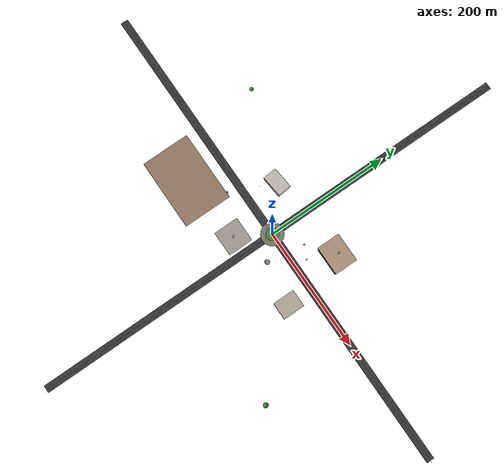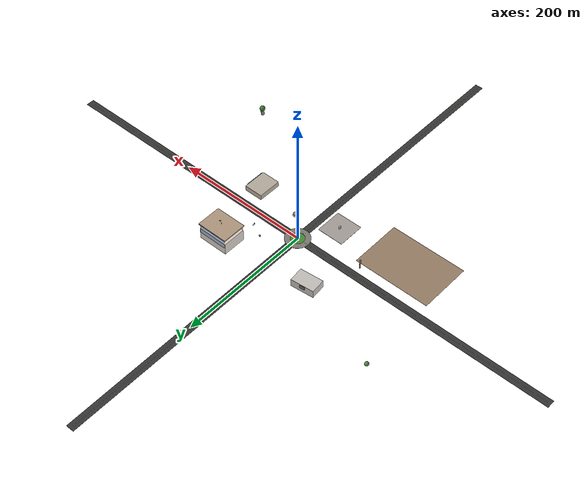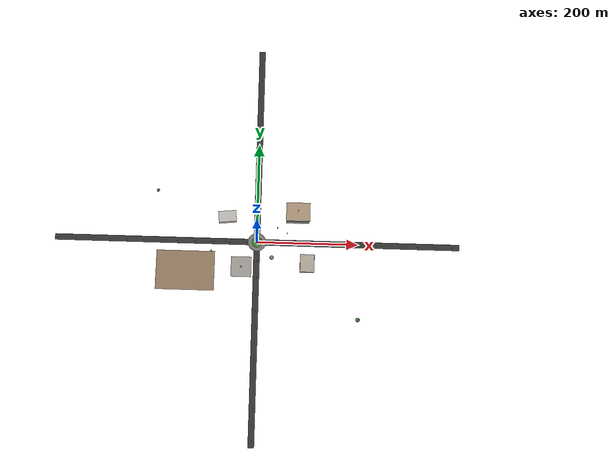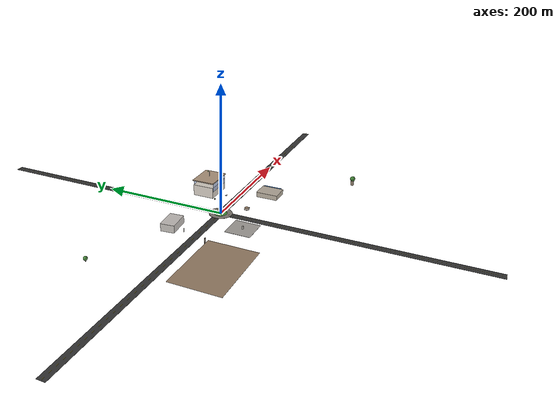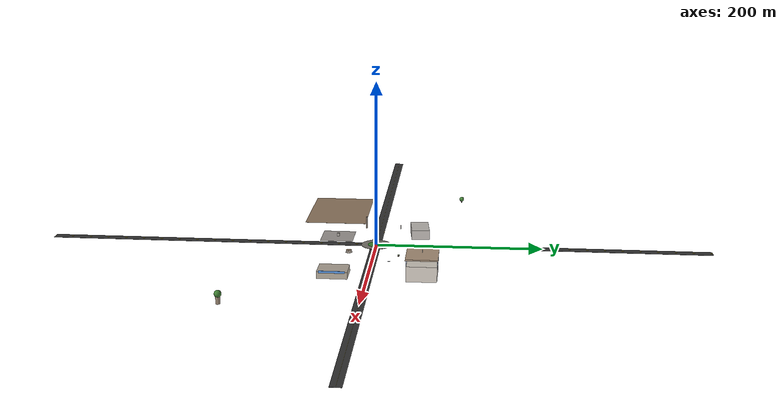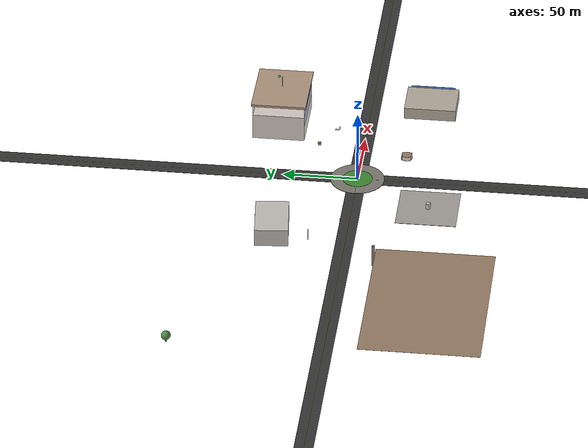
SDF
<sdf version="1.9">
 <world name="dodoma_tanzania_realistic">
  <physics type="ode">
   <max_step_size>0.004</max_step_size>
   <real_time_factor>1.0</real_time_factor>
   <real_time_update_rate>250</real_time_update_rate>
   <gravity>0 0 -9.8066</gravity>
  </physics>
  <spherical_coordinates>
   <surface_model>EARTH_WGS84</surface_model>
   <world_frame_orientation>ENU</world_frame_orientation>
   <latitude_deg>-6.1630</latitude_deg>
   <longitude_deg>35.7516</longitude_deg>
   <elevation>1120</elevation>
   <heading_deg>0</heading_deg>
  </spherical_coordinates>
  <scene>
   <grid>false</grid>
   <sky>
    <time>14.0</time>
    <sunrise>6.2</sunrise>
    <sunset>18.3</sunset>
    <clouds><speed>5</speed><humidity>0.35</humidity><mean_size>0.6</mean_size></clouds>
   </sky>
   <ambient>0.52 0.52 0.52 1</ambient>
   <background>0.6 0.72 0.88 1</background>
   <shadows>true</shadows>
   <fog><type>linear</type><start>500</start><end>1500</end><density>0.0005</density></fog>
  </scene>
  <light type="directional" name="sun">
   <pose>0 0 100 0 0 0</pose>
   <diffuse>1.0 0.98 0.92 1</diffuse>
   <specular>0.6 0.6 0.55 1</specular>
   <attenuation>
    <range>1000</range>
    <constant>0.9</constant>
    <linear>0.008</linear>
    <quadratic>0.0008</quadratic>
   </attenuation>
   <direction>-0.25 0.15 -0.96</direction>
  </light>
  <model name="terrain">
   <static>true</static>
   <link name="link">
    <collision name="collision">
     <geometry>
      <heightmap>
       <size>2000 2000 50</size>
       <uri>file://media/materials/textures/dodoma_heightmap.png</uri>
       <texture>
        <size>1000 1000</size>
        <diffuse>file://media/materials/textures/dirt.png</diffuse>
        <normal>file://media/materials/textures/dirt_normal.png</normal>
       </texture>
      </heightmap>
     </geometry>
    </collision>
   </link>
  </model>
  <model name="road_a104_ew">
   <pose>0 0 0.15 0 0 0</pose>
   <static>true</static>
   <link name="link">
    <visual name="asphalt">
     <geometry><box><size>800 12 0.2</size></box></geometry>
     <material>
      <ambient>0.18 0.18 0.18 1</ambient>
      <diffuse>0.22 0.22 0.22 1</diffuse>
      <specular>0.05 0.05 0.05 1</specular>
     </material>
    </visual>
    <visual name="center_line">
     <pose>0 0 0.25 0 0 0</pose>
     <geometry><box><size>800 0.15 0.03</size></box></geometry>
     <material>
      <ambient>0.95 0.85 0.15 1</ambient>
      <diffuse>1 0.9 0.2 1</diffuse>
      <emissive>0.3 0.25 0.05 1</emissive>
     </material>
    </visual>
    <visual name="lane_left">
     <pose>-3 0 0.25 0 0 0</pose>
     <geometry><box><size>800 0.1 0.02</size></box></geometry>
     <material><ambient>0.95 0.95 0.95 1</ambient><diffuse>1 1 1 1</diffuse></material>
    </visual>
    <visual name="lane_right">
     <pose>3 0 0.25 0 0 0</pose>
     <geometry><box><size>800 0.1 0.02</size></box></geometry>
     <material><ambient>0.95 0.95 0.95 1</ambient><diffuse>1 1 1 1</diffuse></material>
    </visual>
   </link>
  </model>
  <model name="road_jamhuri_ns">
   <pose>0 0 0.15 0 0 0</pose>
   <static>true</static>
   <link name="link">
    <visual name="asphalt">
     <geometry><box><size>12 800 0.2</size></box></geometry>
     <material><ambient>0.18 0.18 0.18 1</ambient><diffuse>0.22 0.22 0.22 1</diffuse></material>
    </visual>
    <visual name="center_line">
     <pose>0 0 0.25 0 0 0</pose>
     <geometry><box><size>0.15 800 0.03</size></box></geometry>
     <material><ambient>0.95 0.85 0.15 1</ambient><diffuse>1 0.9 0.2 1</diffuse></material>
    </visual>
   </link>
  </model>
  <model name="roundabout_central">
   <pose>0 0 0.15 0 0 0</pose>
   <static>true</static>
   <link name="link">
    <visual name="concrete">
     <geometry><cylinder><radius>18</radius><length>0.3</length></cylinder></geometry>
     <material><ambient>0.45 0.43 0.4 1</ambient><diffuse>0.5 0.48 0.45 1</diffuse></material>
    </visual>
    <visual name="inner_garden">
     <pose>0 0 0.35 0 0 0</pose>
     <geometry><cylinder><radius>10</radius><length>0.1</length></cylinder></geometry>
     <material><ambient>0.2 0.45 0.15 1</ambient><diffuse>0.25 0.55 0.2 1</diffuse></material>
    </visual>
   </link>
  </model>
  <model name="bunge_tanzania_detailed">
   <pose>80 60 0 0 0 0</pose>
   <static>true</static>
   <link name="main_building">
    <collision name="collision"><geometry><box><size>45 35 18</size></box></geometry></collision>
    <visual name="walls">
     <geometry><box><size>45 35 18</size></box></geometry>
     <material><ambient>0.78 0.75 0.7 1</ambient><diffuse>0.85 0.82 0.78 1</diffuse></material>
    </visual>
    <visual name="windows_front">
     <pose>0 17.5 9 0 0 0</pose>
     <geometry><box><size>43 0.2 14</size></box></geometry>
     <material>
      <ambient>0.55 0.65 0.85 0.6</ambient>
      <diffuse>0.6 0.7 0.9 0.6</diffuse>
      <transparency>0.4</transparency>
     </material>
    </visual>
    <visual name="windows_back">
     <pose>0 -17.5 9 0 0 0</pose>
     <geometry><box><size>43 0.2 14</size></box></geometry>
     <material>
      <ambient>0.55 0.65 0.85 0.6</ambient>
      <diffuse>0.6 0.7 0.9 0.6</diffuse>
      <transparency>0.4</transparency>
     </material>
    </visual>
    <visual name="roof">
     <pose>0 0 17 0 0 0</pose>
     <geometry><box><size>47 37 1.5</size></box></geometry>
     <material><ambient>0.65 0.55 0.45 1</ambient><diffuse>0.7 0.6 0.5 1</diffuse></material>
    </visual>
    <visual name="flag_pole">
     <pose>0 0 23 0 0 0</pose>
     <geometry><cylinder><radius>0.15</radius><length>8</length></cylinder></geometry>
     <material><ambient>0.9 0.9 0.9 1</ambient><diffuse>1 1 1 1</diffuse></material>
    </visual>
    <visual name="flag">
     <pose>0 2 27 0 0 0</pose>
     <geometry><box><size>2.5 1.5 0.05</size></box></geometry>
     <material>
      <ambient>0.1 0.6 0.2 1</ambient>
      <diffuse>0.15 0.7 0.25 1</diffuse>
      <emissive>0 0.1 0 1</emissive>
     </material>
    </visual>
   </link>
  </model>
  <model name="city_council">
   <pose>-60 50 0 0 0 0.1</pose>
   <static>true</static>
   <link name="link">
    <collision name="collision"><geometry><box><size>35 22 12</size></box></geometry></collision>
    <visual name="building">
     <geometry><box><size>35 22 12</size></box></geometry>
     <material><ambient>0.72 0.7 0.68 1</ambient><diffuse>0.78 0.76 0.74 1</diffuse></material>
    </visual>
    <visual name="entrance">
     <pose>0 11 2 0 0 0</pose>
     <geometry><box><size>8 0.3 5</size></box></geometry>
     <material><ambient>0.4 0.35 0.3 1</ambient><diffuse>0.5 0.45 0.4 1</diffuse></material>
    </visual>
   </link>
  </model>
  <model name="shopping_complex">
   <pose>100 -40 0 0 0 0</pose>
   <static>true</static>
   <link name="link">
    <collision name="collision"><geometry><box><size>28 35 8</size></box></geometry></collision>
    <visual name="walls">
     <geometry><box><size>28 35 8</size></box></geometry>
     <material><ambient>0.68 0.64 0.58 1</ambient><diffuse>0.72 0.68 0.62 1</diffuse></material>
    </visual>
    <visual name="shop_signs">
     <pose>14 0 4 0 0 0</pose>
     <geometry><box><size>0.2 30 2.5</size></box></geometry>
     <material>
      <ambient>0.3 0.55 0.85 1</ambient>
      <diffuse>0.35 0.6 0.9 1</diffuse>
      <emissive>0.1 0.2 0.3 1</emissive>
     </material>
    </visual>
   </link>
  </model>
  <model name="vendor_stall_1">
   <pose>40 30 0 0 0 0</pose>
   <static>true</static>
   <link name="link">
    <visual name="base">
     <geometry><box><size>2 2 0.1</size></box></geometry>
     <material><ambient>0.55 0.45 0.35 1</ambient><diffuse>0.6 0.5 0.4 1</diffuse></material>
    </visual>
    <visual name="roof">
     <pose>0 0 1.5 0 0 0</pose>
     <geometry><box><size>2.2 2.2 0.05</size></box></geometry>
     <material><ambient>0.3 0.5 0.2 1</ambient><diffuse>0.35 0.55 0.25 1</diffuse></material>
    </visual>
   </link>
  </model>
  <model name="jimkor_stadium">
   <pose>-140 -60 0 0 0 0</pose>
   <static>true</static>
   <link name="pitch">
    <collision name="collision"><geometry><box><size>105 68 0.5</size></box></geometry></collision>
    <visual name="grass">
     <geometry><box><size>105 68 0.3</size></box></geometry>
     <material><ambient>0.12 0.35 0.08 1</ambient><diffuse>0.15 0.45 0.1 1</diffuse></material>
    </visual>
    <visual name="track">
     <pose>0 0 0.35 0 0 0</pose>
     <geometry><box><size>115 78 0.05</size></box></geometry>
     <material><ambient>0.55 0.45 0.35 1</ambient><diffuse>0.6 0.5 0.4 1</diffuse></material>
    </visual>
   </link>
  </model>
  <model name="nyerere_square">
   <pose>-30 -50 0 0 0 0</pose>
   <static>true</static>
   <link name="pavement">
    <visual name="ground">
     <geometry><box><size>40 40 0.2</size></box></geometry>
     <material><ambient>0.58 0.56 0.54 1</ambient><diffuse>0.65 0.63 0.61 1</diffuse></material>
    </visual>
    <visual name="monument">
     <pose>0 0 2 0 0 0</pose>
     <geometry><cylinder><radius>1.5</radius><length>4</length></cylinder></geometry>
     <material>
      <ambient>0.7 0.68 0.65 1</ambient>
      <diffuse>0.75 0.73 0.7 1</diffuse>
      <specular>0.3 0.28 0.25 1</specular>
     </material>
    </visual>
   </link>
  </model>
  <model name="speed_bump_1">
   <pose>50 0 0.2 0 0 0</pose>
   <static>true</static>
   <link name="link">
    <visual name="bump">
     <geometry><box><size>8 0.4 0.08</size></box></geometry>
     <material><ambient>0.25 0.25 0.25 1</ambient><diffuse>0.3 0.3 0.3 1</diffuse></material>
    </visual>
   </link>
  </model>
  <model name="road_barrier_1">
   <pose>-50 6 0.3 0 0 0</pose>
   <static>true</static>
   <link name="link">
    <visual name="barrier">
     <geometry><box><size>1.5 0.5 0.6</size></box></geometry>
     <material><ambient>0.9 0.6 0.1 1</ambient><diffuse>0.95 0.65 0.15 1</diffuse></material>
    </visual>
   </link>
  </model>
  <model name="acacia_group_1">
   <pose>-200 100 0 0 0 0</pose>
   <static>true</static>
   <link name="trunk">
    <visual name="visual">
     <geometry><cylinder><radius>0.4</radius><length>3.5</length></cylinder></geometry>
     <material><ambient>0.4 0.35 0.3 1</ambient><diffuse>0.45 0.4 0.35 1</diffuse></material>
    </visual>
   </link>
   <link name="canopy">
    <pose>0 0 3 0 0 0</pose>
    <visual name="visual">
     <geometry><sphere><radius>3</radius></sphere></geometry>
     <material><ambient>0.25 0.45 0.2 1</ambient><diffuse>0.3 0.55 0.25 1</diffuse></material>
    </visual>
   </link>
  </model>
  <model name="baobab_1">
   <pose>200 -150 0 0 0 0</pose>
   <static>true</static>
   <link name="trunk">
    <visual name="visual">
     <geometry><cylinder><radius>2.5</radius><length>8</length></cylinder></geometry>
     <material><ambient>0.55 0.48 0.4 1</ambient><diffuse>0.6 0.53 0.45 1</diffuse></material>
    </visual>
   </link>
   <link name="branches">
    <pose>0 0 7 0 0 0</pose>
    <visual name="visual">
     <geometry><sphere><radius>4</radius></sphere></geometry>
     <material><ambient>0.2 0.4 0.15 1</ambient><diffuse>0.25 0.5 0.2 1</diffuse></material>
    </visual>
   </link>
  </model>
  <model name="utility_pole_1">
   <pose>-70 25 0 0 0 0</pose>
   <static>true</static>
   <link name="pole">
    <visual name="visual">
     <geometry><cylinder><radius>0.2</radius><length>8</length></cylinder></geometry>
     <material><ambient>0.5 0.45 0.4 1</ambient><diffuse>0.55 0.5 0.45 1</diffuse></material>
    </visual>
   </link>
  </model>
  <model name="bus_stop_1">
   <pose>60 20 0 0 0 1.57</pose>
   <static>true</static>
   <link name="shelter">
    <visual name="roof">
     <geometry><box><size>3 1.5 0.1</size></box></geometry>
     <material><ambient>0.6 0.65 0.7 1</ambient><diffuse>0.65 0.7 0.75 1</diffuse></material>
    </visual>
    <visual name="back">
     <pose>-1.4 0 1 0 0 0</pose>
     <geometry><box><size>0.1 1.5 2</size></box></geometry>
     <material><ambient>0.35 0.4 0.45 1</ambient><diffuse>0.4 0.45 0.5 1</diffuse></material>
    </visual>
   </link>
  </model>
  <model name="test_gazebo">
   <pose>30 -30 0 0 0 0</pose>
   <static>true</static>
   <link name="base">
    <collision name="collision">
     <geometry><cylinder><radius>4</radius><length>0.2</length></cylinder></geometry>
    </collision>
    <visual name="floor">
     <geometry><cylinder><radius>4</radius><length>0.15</length></cylinder></geometry>
     <material><ambient>0.65 0.6 0.55 1</ambient><diffuse>0.7 0.65 0.6 1</diffuse></material>
    </visual>
    <visual name="roof">
     <pose>0 0 2.5 0 0 0</pose>
     <geometry><cylinder><radius>3.5</radius><length>0.1</length></cylinder></geometry>
     <material><ambient>0.55 0.45 0.35 1</ambient><diffuse>0.6 0.5 0.4 1</diffuse></material>
    </visual>
    <visual name="pillar_1">
     <pose>-3 -3 1.2 0 0 0</pose>
     <geometry><cylinder><radius>0.15</radius><length>2.5</length></cylinder></geometry>
     <material><ambient>0.7 0.65 0.6 1</ambient><diffuse>0.75 0.7 0.65 1</diffuse></material>
    </visual>
    <visual name="pillar_2">
     <pose>3 -3 1.2 0 0 0</pose>
     <geometry><cylinder><radius>0.15</radius><length>2.5</length></cylinder></geometry>
    </visual>
    <visual name="pillar_3">
     <pose>-3 3 1.2 0 0 0</pose>
     <geometry><cylinder><radius>0.15</radius><length>2.5</length></cylinder></geometry>
    </visual>
    <visual name="pillar_4">
     <pose>3 3 1.2 0 0 0</pose>
     <geometry><cylinder><radius>0.15</radius><length>2.5</length></cylinder></geometry>
    </visual>
   </link>
  </model>
  <model name="chimney">
   <pose>-90 -20 0 0 0 0</pose>
   <static>true</static>
   <link name="stack">
    <visual name="visual">
     <geometry><cylinder><radius>1</radius><length>15</length></cylinder></geometry>
     <material><ambient>0.5 0.45 0.4 1</ambient><diffuse>0.55 0.5 0.45 1</diffuse></material>
    </visual>
   </link>
  </model>
 </world>
</sdf>
